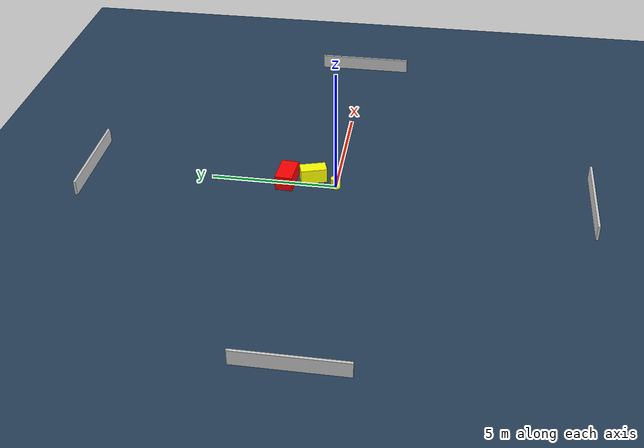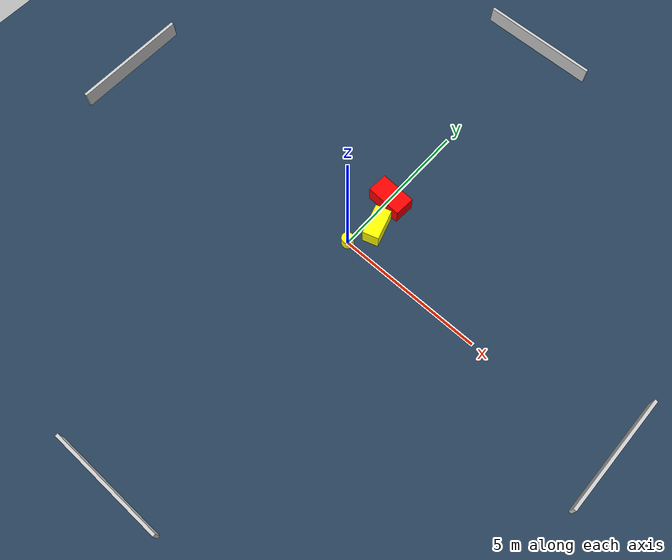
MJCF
<?xml version="1.0" ?>
<mujoco model="generated_environment">
  <option timestep="0.01" integrator="RK4" cone="elliptic"/>
  <default>
    <geom density="1"/>
  </default>
  <asset>
    <texture builtin="gradient" height="3072" name="skybox" rgb1="0.3 0.5 0.7" rgb2="0 0 0" type="skybox" width="512"/>
    <texture builtin="checker" height="300" name="groundplane" rgb1="0.2 0.3 0.4" rgb2="0.1 0.2 0.3" type="2d" width="300"/>
    <material name="groundplane" reflectance="0.2" texrepeat="5 5" texture="groundplane"/>
  </asset>
  <worldbody>
    <light dir="0 0 -1" directional="true" pos="0 0 1.5"/>
    <geom condim="3" friction="0.5 0.005 0.001" material="groundplane" name="floor" pos="0 0 0" size="0 0 0.05" type="plane"/>
    <body name="walls">
      <geom name="wall_1" condim="4" pos="-10.0 0.0 0.3" rgba="0.800000011920929 0.800000011920929 0.800000011920929 1.0" size="0.05 2.0 0.3" type="box"/>
      <geom name="wall_2" condim="4" pos="10.0 0.0 0.3" rgba="0.800000011920929 0.800000011920929 0.800000011920929 1.0" size="0.05 2.0 0.3" type="box"/>
      <geom name="wall_3" condim="4" pos="0.0 -10.0 0.3" rgba="0.800000011920929 0.800000011920929 0.800000011920929 1.0" size="2.0 0.05 0.3" type="box"/>
      <geom name="wall_4" condim="4" pos="0.0 10.0 0.3" rgba="0.800000011920929 0.800000011920929 0.800000011920929 1.0" size="2.0 0.05 0.3" type="box"/>
    </body>
    <body name="robot">
      <joint name="joint_x" type="slide" pos="0 0 0" axis="1 0 0"/>
      <joint name="joint_y" type="slide" pos="0 0 0" axis="0 1 0"/>
      <geom name="robot" type="cylinder" pos="0.0 0.0 0.2" size="0.2 0.2 0.0" mass="5.0" friction="1.0 0.005 0.0001" condim="4" rgba="1.0 1.0 0.0 1.0"/>
    </body>
    <body name="obstacle_1_movable">
      <geom name="obstacle_1_movable" condim="4" pos="0.3773810142064369 0.9604591769087382 0.3" euler="0 0 107.07840927569974" friction="0.0 0.005 0.001" rgba="1.0 1.0 0.0 1.0" size="0.5230780542307647 0.2705561479118254 0.3" type="box" mass="0.1"/>
      <joint type="free"/>
    </body>
    <body name="obstacle_2_static">
      <geom name="obstacle_2_static" condim="4" pos="0.07870755832355532 1.971365353941332 0.3" euler="0 0 356.55871003626805" friction="0.0 0.005 0.001" rgba="1.0 0.0 0.0 1.0" size="0.6091298305906008 0.3460959572985635 0.3" type="box"/>
    </body>
  </worldbody>
  <actuator>
    <motor name="actuator_x" joint="joint_x" gear="1" ctrlrange="-1 1"/>
    <motor name="actuator_y" joint="joint_y" gear="1" ctrlrange="-1 1"/>
  </actuator>
</mujoco>
